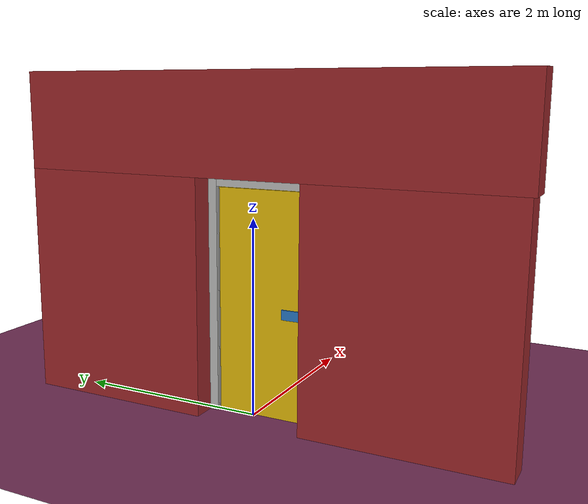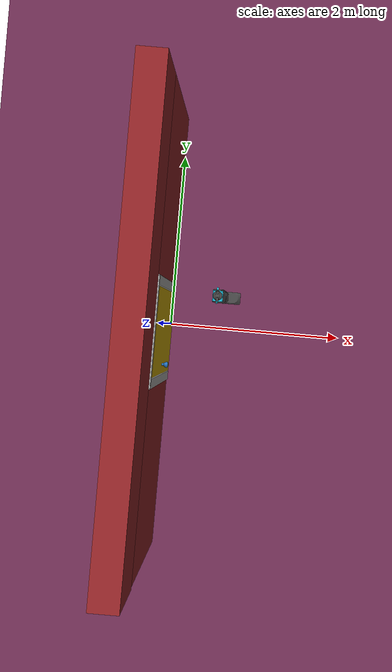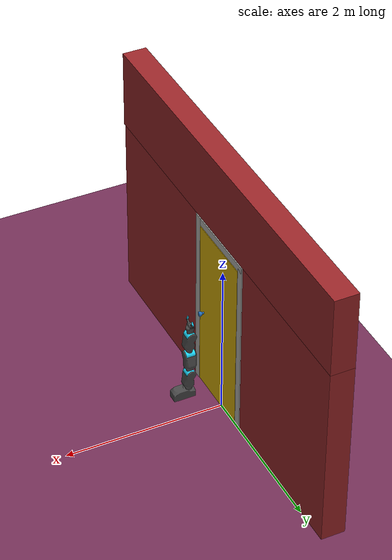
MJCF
<?xml version="1.0" encoding="utf-8"?>
<mujoco model="door_knob">
	<compiler angle="radian"/>
	<include file="../../robot/blue_right_v2_position.xml"/>
	<option gravity="0 0 -9.81" timestep="0.001"/>
	<visual>
		<map fogend="5" fogstart="3" force="0.1" zfar="10" znear="0.01"/>
		<quality shadowsize="2048"/>
		<global offheight="256" offwidth="256"/>
	</visual>
	<asset>
		<mesh file="../../door/roundknobs/1558288445/body_1.stl" name="door_knob_1" scale="0.001 0.001 0.001"/>
		<mesh file="../../door/roundknobs/1558288445/body_2.stl" name="door_knob_2" scale="0.001 0.001 0.001"/>
		<texture builtin="flat" height="32" name="wall_geom" type="2d" width="32"/>
		<texture builtin="flat" height="32" name="frame_geom" type="2d" width="32"/>
		<texture builtin="flat" height="32" name="door_geom" type="2d" width="32"/>
		<texture builtin="flat" height="32" name="knob_geom" type="2d" width="32"/>
		<texture builtin="gradient" height="128" rgb1="0.4 0.6 0.8" rgb2="0 0 0" type="skybox" width="128"/>
		<texture builtin="gradient" height="512" name="texplane" rgb1="0.43 0.06 0.49" rgb2="0.47 0.31 0.19" type="2d" width="512"/>
		<material name="Paint" shininess="0.33" specular="0.11" texture="wall_geom"/>
		<material name="Wood" shininess="0.04" specular="0.05" texture="frame_geom"/>
		<material name="Carpet" shininess="0.03" specular="0.01" texture="door_geom"/>
		<material name="Metal" shininess="0.99" specular="0.89" texture="knob_geom"/>
		<material name="Floor" texture="texplane"/>
	</asset>
	<contact>
		<pair geom1="knob_latch" geom2="door_frame_0" solref="0.01 1"/>
		<pair geom1="knob_latch" geom2="door_frame_1" solref="0.01 1"/>
		<pair geom1="knob_latch" geom2="door_frame_2" solref="0.01 1"/>
		<pair geom1="knob_latch" geom2="door_frame_3" solref="0.01 1"/>
	</contact>
	<default>
		<joint armature="1" damping="1" limited="true"/>
		<default class="wall">
			<geom rgba="0.6 0.15 0.16 1.0" type="mesh"/>
		</default>
		<default class="frame">
			<geom rgba="0.72 0.72 0.71 1.0" type="mesh"/>
		</default>
		<default class="door">
			<geom rgba="0.87 0.71 0.03 1.0" type="mesh"/>
		</default>
		<default class="door_knob">
			<geom condim="4" rgba="0.15 0.46 0.76 1.0" type="mesh"/>
		</default>
		<default class="robot">
			<joint damping="0.09"/>
		</default>
	</default>
	<worldbody>
		<light diffuse="0.9 1.0 0.9" dir="0.2 -0.17 -0.32" directional="true" pos="4.1 -3.95 3.94"/>
		<light diffuse="0.9 0.9 1.0" dir="0.02 0.06 -0.45" directional="true" pos="4.7 2.83 6.58"/>
		<light diffuse="1.0 1.0 0.9" dir="0.12 -0.3 -0.32" directional="true" pos="0.67 1.77 6.37"/>
		<light diffuse="1.0 0.9 0.9" dir="-0.48 0.15 -0.45" directional="true" pos="1.19 2.95 5.48"/>
		<geom material="Floor" name="floor" pos="0 0 -0.05" size="15.0 15.0 0.05" type="plane"/>
		<camera fovy="60" mode="fixed" name="camera1" pos="0.99 -0.5 1.0" euler="0.0 1.57 1.57"/>
		<camera fovy="60" mode="fixed" name="camera2" pos="0.5 0.0 1.99" euler="0 0 0"/>
		<body childclass="wall" name="wall_link" pos="0.0 -0.093 0.0">
			<inertial mass="100" pos="0 0 0" diaginertia="0.0001 0.0001 0.0001"/>
			<geom material="Carpet" name="wall_0" pos="-0.15 -1.5315 1.201" size="0.15 1.0 1.201" type="box" euler="0 0 0"/>
			<geom material="Carpet" name="wall_1" pos="-0.15 1.5615 1.201" size="0.15 1.0 1.201" type="box" euler="0 0 0"/>
			<geom material="Carpet" name="wall_2" pos="-0.15 0 2.902" size="0.15 2.5615 0.5" type="box" euler="0 0 0"/>
			<body childclass="frame" name="frame_link" pos="0 -0.35997 1.091">
				<inertial mass="500" pos="0 0 0" diaginertia="0.0001 0.0001 0.0001"/>
				<geom material="Carpet" name="door_frame_0" pos="0 -0.16153 0.1100000000000001" size="0.0125 0.05 1.201" type="box" euler="0 0 0"/>
				<geom material="Carpet" name="door_frame_1" pos="0 0.8814700000000001 0.1100000000000001" size="0.0125 0.05 1.201" type="box" euler="0 0 0"/>
				<geom material="Carpet" name="door_frame_2" pos="0 0.35997 1.2610000000000001" size="0.0125 0.5615 0.05" type="box" euler="0 0 0"/>
				<geom material="Carpet" name="door_frame_3" pos="-0.0445 -0.16153 0.1100000000000001" size="0.0125 0.05 1.201" type="box" euler="0 0 0"/>
				<geom material="Carpet" name="door_frame_4" pos="-0.0445 0.8814700000000001 0.1100000000000001" size="0.0125 0.05 1.201" type="box" euler="0 0 0"/>
				<geom material="Carpet" name="door_frame_5" pos="-0.0445 0.35997 1.2610000000000001" size="0.0125 0.5615 0.05" type="box" euler="0 0 0"/>
				<body childclass="door" name="door_link" pos="0 0 0">
					<joint armature="0.0001" axis="0 0 1" damping="1.7" frictionloss="0" limited="true" name="hinge0" pos="0 0.82147 0" range="-0.0 1.57" stiffness="0.1" type="hinge"/>
					<geom material="Paint" name="door0" pos="0 0.35997 0.06000000000000005" size="0.0125 0.4615 1.1394900000000001" type="box" euler="0 0 0"/>
					<inertial mass="48.869158000000006" pos="0 0.35997 0.06000000000000005" diaginertia="25.05005753800117 21.583181731165173 3.471966344127667"/>
					<body childclass="door_knob" name="knob_link" pos="0 0 0">
						<inertial mass="1" pos="0 0 0" diaginertia="0.001 0.001 0.001"/>
						<joint armature="0" axis="0 1 0" damping="30000" frictionloss="0" limited="true" name="target0" range="-0.2 0.3" stiffness="0" type="slide"/>
						<joint armature="0" axis="0 0 1" damping="30000" frictionloss="0" limited="true" name="target1" range="-0.5 0.5" stiffness="0" type="slide"/>
						<joint armature="0.0001" axis="1 0 0" damping="1.81" frictionloss="0" limited="true" name="hinge1" pos="0 0 0" range="-1.3083333333333333 1.3083333333333333" stiffness="1.13" type="hinge"/>
						<body childclass="door_knob" name="roundknob_link" pos="0.0125 0 0">
							<geom friction="0.52 0.001 0.003" material="Carpet" mesh="door_knob_1" name="door_knob_1" euler="-1.57 1.57 0"/>
							<geom friction="0.52 0.001 0.003" material="Carpet" mesh="door_knob_2" name="door_knob_2" euler="-1.57 1.57 0"/>
							<geom material="Paint" name="knob_latch" pos="-0.03475 0 0" size="0.0075 0.13486333333333334 0.05" type="box" euler="0 0 0"/>
							<inertial mass="1" pos="-0.06225000000000001 0 0" diaginertia="0.0017240098898148146 0.00022708333333333337 0.0015344265564814813"/>
						</body>
					</body>
				</body>
			</body>
		</body>
	</worldbody>
</mujoco>

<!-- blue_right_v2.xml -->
<mujoco model="blue_descriptions_right">
    <compiler angle="radian" meshdir="../../robot/meshes_blue_v2/"/>
    <size njmax="500" nconmax="100" />

    <default>
        <joint armature="0.04" damping="0.2" limited="true" />
        <geom friction=".5 .1 .1" margin="0.002" condim="3" />
    </default>

    <asset>
        <mesh name="arm_base_link_v2" file="arm_base_link_v2.STL" />
        <mesh name="roll_link_v2" file="roll_link_v2.STL" />
        <mesh name="lift_link_v2" file="lift_link_v2.STL" />
        <mesh name="hand_base_link" file="hand_base_link.STL" />
        <mesh name="finger_limb_link" file="finger_limb_link.STL" />
        <mesh name="finger_tip_link" file="finger_tip_link.STL" />

    </asset>

    <worldbody>

        <body name="robotbase_link" pos="0.6 0.35 0.7">
            <inertial pos="0.107964 -0.000118075 0.0740607" quat="-0.00144458 0.606987 0.000927747 0.79471" mass="3.45161" diaginertia="0.0175534 0.0157386 0.00730286" />
            <geom type="mesh" rgba="0.2784 0.2784 0.2784 1" mesh="arm_base_link_v2" contype="1" conaffinity="28" />
            <body name="robotshoulder_link" pos="0 0 0.083499" quat="0 1 0 0">
                <inertial pos="0.00796478 6.88165e-07 -0.101495" quat="0.712797 -0.021542 -0.0203263 0.700745" mass="2.21396" diaginertia="0.00680774 0.00679994 0.00633497" />
                <joint name="right_base_roll_joint" pos="0 0 0" axis="0 0 1" limited="true" range="-3.3999 2.3412" />
                <geom type="mesh" rgba="0.2784 0.2784 0.2784 1" mesh="roll_link_v2" contype="2" conaffinity="24" />
                <body name="robotshoulder_liftlink" pos="-0.012 0 -0.232779" quat="0.707107 -0.707107 0 0">
                    <inertial pos="-1.3238e-05 0.00162984 3.71222e-05" quat="0.714714 -0.00266942 -0.00304239 0.699405" mass="0.415577" diaginertia="0.000846898 0.000835923 0.000571351" />
                    <joint name="right_shoulder_lift_joint" pos="0 0 0" axis="0 0 -1" limited="true" range="-2.2944 0" />
                    <geom type="mesh" rgba="0.116747 0.862745 1 1" mesh="lift_link_v2" contype="0" />
                    <body name="robotupperarm_link" pos="0 0.0359532 0" quat="0.500704 0.500704 0.499295 -0.499295">
                        <inertial pos="0.00796478 6.88165e-07 -0.101495" quat="0.712797 -0.021542 -0.0203263 0.700745" mass="2.21396" diaginertia="0.00680774 0.00679994 0.00633497" />
                        <joint name="right_shoulder_roll_joint" pos="0 0 0" axis="0 0 1" limited="true" range="-2.6761 2.6761" />
                        <geom type="mesh" rgba="0.2784 0.2784 0.2784 1" mesh="roll_link_v2" contype="4" conaffinity="17" />
                        <body name="robotupperarm_liftlink" pos="-0.012 0 -0.232779" quat="0.707107 -0.707107 0 0">
                            <inertial pos="-1.3238e-05 0.00162984 3.71222e-05" quat="0.714714 -0.00266942 -0.00304239 0.699405" mass="0.415577" diaginertia="0.000846898 0.000835923 0.000571351" />
                            <joint name="right_elbow_lift_joint" pos="0 0 0" axis="0 0 -1" limited="true" range="-2.2944 0" />
                            <geom type="mesh" rgba="0.116747 0.862745 1 1" mesh="lift_link_v2" contype="0" />
                            <body name="robotforearm_link" pos="0 0.0359532 0" quat="0.500704 0.500704 -0.499295 0.499295">
                                <inertial pos="0.00796478 6.88165e-07 -0.101495" quat="0.712797 -0.021542 -0.0203263 0.700745" mass="1.71368" diaginertia="0.00680774 0.00679994 0.00633497" />
                                <joint name="right_elbow_roll_joint" pos="0 0 0" axis="0 0 1" limited="true" range="-2.6761 2.6761" />
                                <geom type="mesh" rgba="0.2784 0.2784 0.2784 1" mesh="roll_link_v2" contype="8" conaffinity="3" />
                                <body name="robotwrist_liftlink" pos="-0.012 0 -0.232779" quat="0.707107 -0.707107 0 0">
                                    <inertial pos="-1.3238e-05 0.00162984 3.71222e-05" quat="0.714714 -0.00266942 -0.00304239 0.699405" mass="0.415577" diaginertia="0.000846898 0.000835923 0.000571351" />
                                    <joint name="right_wrist_lift_joint" pos="0 0 0" axis="0 0 -1" limited="true" range="-2.2944 0" />
                                    <geom type="mesh" rgba="0.116747 0.862745 1 1" mesh="lift_link_v2" contype="0" />
                                    <body name="robotwrist_rolllink" pos="0 0.0701432 0" quat="0.707107 0.707107 0 0">
                                        <inertial pos="0.00526386 2.70692e-05 -0.0641638" quat="0.99991 0.000246685 0.0133803 0.00035395" mass="0.65711" diaginertia="0.00578835 0.00530224 0.0034223" />
                                        <joint name="right_wrist_roll_joint" pos="0 0 0" axis="0 0 1" limited="true" range="-2.6761 2.6761" />
                                        <camera fovy="60" mode="fixed" name="hand_camera" pos="0.06 0 -0.02" euler="0 0 -1.57"/>
                                        <geom type="mesh" rgba="0.2784 0.2784 0.2784 1" mesh="hand_base_link" contype="16" conaffinity="7" />
                                        <body name="right_gripper_link" pos="0 0 -0.1" quat="0.535369 0.498747 0.498747 -0.464631">
                                            <inertial pos="-7.00549e-05 2.51272e-05 -0.0523671" quat="1 5.54202e-05 -0.000544908 -0.000762021" mass="0.00471098" diaginertia="0.000916889 0.000877269 0.000293332" />
                                            <joint name="right_gripper_joint" pos="0 0 0" axis="0 0 1" limited="true" range="0 1.05" />
                                        </body>
                                        <body name="robotfingerlimb_rightlink" pos="0 0.030703 -0.071979" quat="0.631851 -0.317432 -0.631853 0.317432">
                                            <inertial pos="0.000467332 0.0122666 1.16453e-07" quat="0.705809 0.705807 -0.042877 -0.0427953" mass="0.0384621" diaginertia="1.95846e-05 1.92561e-05 5.02091e-06" />
                                            <joint name="right_r_finger_joint" pos="0 0 0" axis="0 0 1" limited="true" range="0 1.1" />
                                            <geom type="mesh" rgba="0.2784 0.2784 0.2784 1" mesh="finger_limb_link" contype="16" conaffinity="7" />
                                            <body name="robotfingertip_rightlink" pos="0 0.06 0" quat="0.222329 0.222329 -0.671246 -0.671244">
                                                <inertial pos="0.000428096 -6.39629e-08 0.016281" quat="0.982245 -0.000139751 0.187603 -0.000716219" mass="0.00964245" diaginertia="1.96342e-06 1.95368e-06 4.76554e-07" />
                                                <joint name="right_r_finger_tip_joint" pos="0 0 0" axis="0 1 0" limited="true" range="-1.1 0" />
                                                <geom name="fingerright2" type="mesh" rgba="0.116747 0.862745 1 1" mesh="finger_tip_link" contype="1" conaffinity="1" />
                                            </body>
                                        </body>
                                        <body name="robotfingerlimb_leftlink" pos="0 -0.030703 -0.071979" quat="0.31743 -0.631852 0.317435 -0.631852">
                                            <inertial pos="0.000467332 0.0122666 1.16453e-07" quat="0.705809 0.705807 -0.042877 -0.0427953" mass="0.0384621" diaginertia="1.95846e-05 1.92561e-05 5.02091e-06" />
                                            <joint name="right_l_finger_joint" pos="0 0 0" axis="0 0 1" limited="true" range="0 1.1"/>
                                            <geom type="mesh" rgba="0.2784 0.2784 0.2784 1" mesh="finger_limb_link" contype="16" conaffinity="7" />
                                            <body name="robotfingertip_leftlink" pos="0 0.06 0" quat="0.222329 0.222329 -0.671246 -0.671244">
                                                <inertial pos="0.000428096 -6.39629e-08 0.016281" quat="0.982245 -0.000139751 0.187603 -0.000716219" mass="0.00964245" diaginertia="1.96342e-06 1.95368e-06 4.76554e-07" />
                                                <joint name="right_l_finger_tip_joint" pos="0 0 0" axis="0 1 0" limited="true" range="-1.1 0" />
                                                <geom name="fingerleft2" type="mesh" rgba="0.116747 0.862745 1 1" mesh="finger_tip_link" contype="1" conaffinity="1" />
                                            </body>
                                        </body>
                                        <body name="right_gripper_finger_link" pos="0 0 -0.18" quat="0.707107 -1.29867e-06 0.707107 -1.29867e-06">
                                            <inertial pos="0 0 -0.18" quat="0.707107 -1.29867e-06 0.707107 -1.29867e-06" mass="0" diaginertia="0 0 0" />
                                        </body>
                                    </body>
                                </body>
                                <body name="right_wrist_accel_link" pos="-0.0200083 -0.00051 -0.111067" quat="0.69759 0.69759 0.115618 -0.115618">
                                    <inertial pos="-0.0200083 -0.00051 -0.111067" quat="0.69759 0.69759 0.115618 -0.115618" mass="0" diaginertia="0 0 0" />
                                </body>
                            </body>
                        </body>
                        <body name="right_elbow_accel_link" pos="-0.0200083 -0.00051 -0.111067" quat="0.69759 0.69759 0.115618 -0.115618">
                            <inertial pos="-0.0200083 -0.00051 -0.111067" quat="0.69759 0.69759 0.115618 -0.115618" mass="0" diaginertia="0 0 0" />
                        </body>
                    </body>
                </body>
                <body name="right_shoulder_accel_link" pos="-0.0200083 -0.00051 -0.111067" quat="0.69759 0.69759 0.115618 -0.115618">
                    <inertial pos="-0.0200083 -0.00051 -0.111067" quat="0.69759 0.69759 0.115618 -0.115618" mass="0" diaginertia="0 0 0" />
                </body>
            </body>
        </body>
    </worldbody>

</mujoco>

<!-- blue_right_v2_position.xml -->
<mujoco model="blue_descriptions_right">
    <include file="../../robot/blue_right_v2.xml"/>
    <actuator>
        <position kp="20.0" gear="1.0" joint="right_base_roll_joint" />
        <position kp="20.0" gear="1.0" joint="right_shoulder_lift_joint" />
        <position kp="20.0" gear="1.0" joint="right_shoulder_roll_joint" />
        <position kp="20.0" gear="1.0" joint="right_elbow_lift_joint" />
        <position kp="20.0" gear="1.0" joint="right_elbow_roll_joint" />
        <position kp="20.0" gear="1.0" joint="right_wrist_lift_joint" />
        <position kp="20.0" gear="1.0" joint="right_wrist_roll_joint" />
        <position ctrllimited="true" kp="1.0" ctrlrange="0 1.05" gear="1.0" joint="right_gripper_joint" />
        <position ctrllimited="true" kp="1.0" ctrlrange="0 1.05" joint="right_r_finger_joint" />
        <position ctrllimited="true" kp="1.0" ctrlrange="-1.05 0" joint="right_r_finger_tip_joint" />
        <position ctrllimited="true" kp="1.0" ctrlrange="0 1.05" joint="right_l_finger_joint" />
        <position ctrllimited="true" kp="1.0" ctrlrange="-1.05 0" joint="right_l_finger_tip_joint" />
    </actuator>

</mujoco>
